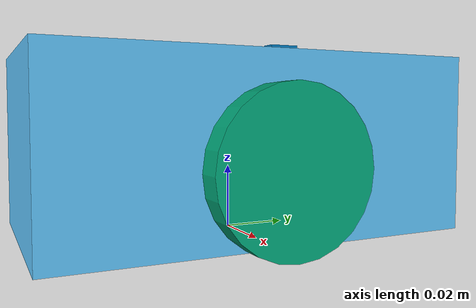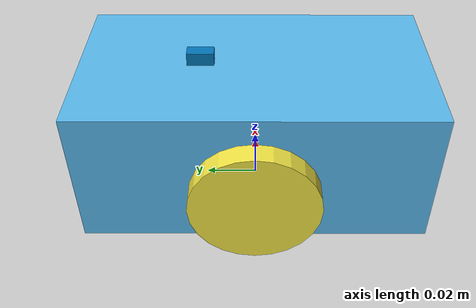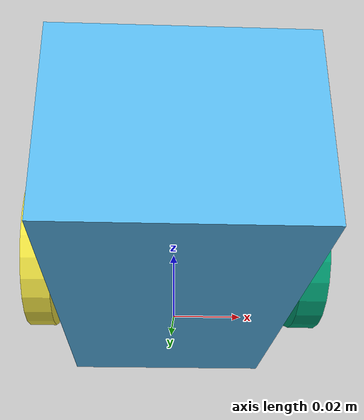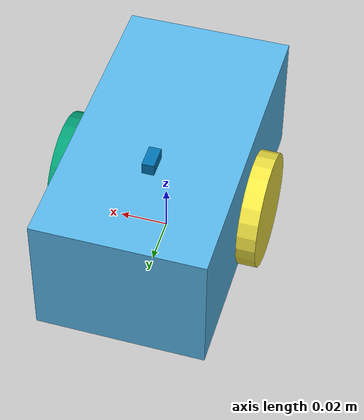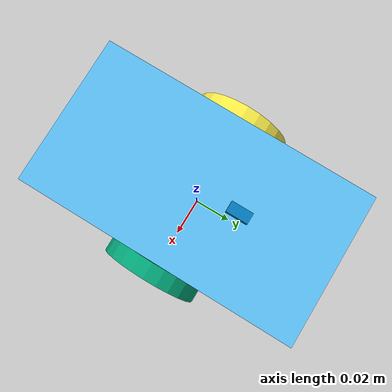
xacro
<?xml version="1.0" ?>
<robot name="SimpleMouse" xmlns:xacro="http://ros.org/wiki/xacro">

 <xacro:include filename="$(find sd_sample_pkg)/urdf/body.urdf.xacro" />
 <xacro:include filename="$(find sd_sample_pkg)/urdf/wheel.urdf.xacro" />
 <xacro:include filename="$(find sd_sample_pkg)/urdf/light_sensor.urdf.xacro" />
 <xacro:include filename="$(find sd_sample_pkg)/urdf/camera.urdf.xacro" />

  <gazebo>
    <plugin name="differential_drive_controller" filename="libgazebo_ros_diff_drive.so">
      <leftJoint>wheel_l_joint</leftJoint>
      <rightJoint>wheel_r_joint</rightJoint>
      <robotBaseFrame>base_link</robotBaseFrame>
      <wheelSeparation>0.08</wheelSeparation>
      <wheelDiameter>0.048</wheelDiameter>
      <publishWheelJointState>true</publishWheelJointState>
      <legacyMode>false</legacyMode>
      <odometryTopic>odometry</odometryTopic>
      <odometryFrame>odometry</odometryFrame>
    </plugin>
  </gazebo>

 <xacro:wheel rl="r" parent="body" />
 <xacro:wheel rl="l" parent="body" />
 <xacro:gazebo_light_sensor name="front" parent="body" xyz="0 0.02 0.03" direction="0" />
 <xacro:camera_macro name="camera/rgb" parent="body" xyz="0 0 0" rpy="${radians(-90)} ${radians(180)} 0"/>
</robot>

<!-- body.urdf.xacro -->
<robot name="body" xmlns:xacro="http://ros.org/wiki/xacro">
<link name="base_link" />

<xacro:property name="b_m" value="1.68"/>
<xacro:property name="b_m2" value="${b_m/12}"/>
<xacro:property name="b_w" value="0.07"/>
<xacro:property name="b_h" value="0.13"/>
<xacro:property name="b_d" value="0.055"/>
<link name="body">
   <visual>
　　<geometry>
　　　<box size="${b_w} ${b_h} ${b_d}" />
     </geometry>
  </visual>
   <collision>
　　<geometry>
　　　<box size="${b_w} ${b_h} ${b_d}" />
     </geometry>
  </collision>
  <inertial>
     <origin xyz="0 0 0" rpy="0 0 0" />
     <mass value="${b_m}" />
    <inertia ixx="${b_m2*(b_h*b_h+b_d*b_d)}" ixy="0"    ixz="0"
                 iyx="0"   iyy="${b_m2*(b_w*b_w+b_d*b_d)}"  iyz="0"
		 izx="0"   izy="0"  izz="${b_m2*(b_w*b_w+b_h*b_h)}" />
  </inertial>
</link>
<joint name="body_joint" type="fixed">
<parent link="base_link" />
   <child link="body" />
   <origin xyz="0 0 0.0275" rpy="0 0 0" />
</joint>
</robot>

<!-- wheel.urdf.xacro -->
<robot name="wheel" xmlns:xacro="http://ros.org/wiki/xacro" >

<xacro:property name="PI" value="3.1415926535897931"/>
<xacro:property name="wheel_radius" value="0.024"/>
<xacro:property name="wheel_height" value="0.008"/>
<xacro:property name="wheel_mass" value="0.112"/>

<xacro:macro name="wheel" params="rl parent">
<link name="wheel_${rl}">
<visual>
  <geometry>
     <cylinder length="${wheel_height}" radius="${wheel_radius}" />
  </geometry>
</visual>
   <collision>
　　<geometry>
　　　<cylinder radius="${wheel_radius}" length="${wheel_height}" />
     </geometry>
  </collision>
  <inertial>
     <origin xyz="0 0 0" rpy="0 0 0" />
     <mass value="${wheel_mass}" />
    <inertia ixx="${wheel_mass*(3*wheel_radius*wheel_radius+wheel_height*wheel_height)/12}"
        ixy="0"  ixz="0"
        iyx="0"  iyy="${wheel_mass*(3*wheel_radius*wheel_radius+wheel_height*wheel_height)/12}"
         iyz="0"
         izx="0"  izy="0"  izz="${wheel_mass*(wheel_radius*wheel_radius)/2}" />
  </inertial>
</link>
<joint name="wheel_${rl}_joint" type="continuous">
  <parent link="${parent}" />
  <child link="wheel_${rl}" />
  <xacro:if value="${rl == 'r'}">
    <origin xyz="0.04 0 ${0.022 - 0.0275}" rpy="0 ${PI/2} 0" />
  </xacro:if>
  <xacro:if value="${rl == 'l'}">
     <origin xyz="-0.04 0 ${0.022 - 0.0275}" rpy="0 ${PI/2} 0" />
  </xacro:if>
  <axis xyz="0 0 -1" />
  <limit effort="10" velocity="10" />
  <joint_properties damping="0.0" friction="0.0" />
</joint>
</xacro:macro>
</robot>

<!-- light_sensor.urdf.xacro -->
<robot name="light_sensor" xmlns:xacro="http://ros.org/wiki/xacro">

<xacro:property name="light_range" value="0.18"/>
<xacro:property name="min_range" value="0.01"/>
<xacro:property name="max_range" value="1.0"/>
<xacro:property name="PI" value="3.14159265358979"/>

<xacro:macro name="gazebo_light_sensor" params="name parent xyz direction">
    <link name="${name}_sensor">
        <visual>
            <geometry>
                <box size="0.01 0.005 0.005"/>
            </geometry>
        </visual>
        <inertial>
            <mass value="0.0001"/>
            <inertia ixx="0.0001" ixy="0" ixz="0"
                     iyx="0" iyy="0.0001" iyz="0"
                     izx="0" izy="0" izz="0.001" />
        </inertial>
    </link>

    <joint name="${name}_sensor_joint" type="fixed">
        <parent link="${parent}"/>
        <child link="${name}_sensor"/>
        <origin xyz="${xyz}" rpy="0 0 ${PI/2 + direction}"/>
    </joint>

    <gazebo reference="${name}_sensor">
        <sensor type="ray" name="${name}_light_sensor">
            <pose>0 0 0 0 0 0</pose>
            <visualize>true</visualize>
            <update_rate>20</update_rate>

            <ray>
                <scan>
                    <horizontal>
                        <sapmles>10</sapmles>
                        <resolution>1</resolution>
                        <min_angle>${light_range/2}</min_angle>
                        <max_angle>${light_range/2}</max_angle>
                    </horizontal>
                </scan>

                <range>
                    <min>${min_range}</min>
                    <max>${max_range}</max>
                    <resolution>0.001</resolution>
                </range>

                <noise>
                    <type>gaussian</type>
                    <mean>0.0</mean>
                    <stdev>0.005</stdev>
                </noise>
            </ray>

            <plugin name="gazebo_${name}_light_sensor_controller" filename="libgazebo_ros_laser.so">
                <topicName>/light_sensor/${name}/scan</topicName>
                <frameName>${name}_sensor</frameName>
            </plugin>
        </sensor>
    </gazebo>

</xacro:macro>
</robot>

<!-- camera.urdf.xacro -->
<robot name="camera" xmlns:xacro="http://ros.org/wiki/xacro">

<xacro:property name="PI" value="3.14159265358979"/>
<xacro:macro name="camera_macro" params="name parent xyz rpy">
<!-- Let's try to model camera! -->
<!-- reference: https://qiita.com/srs/items/7d78f9ad21a0e61f5bff -->
<!-- gazebo official: http://gazebosim.org/tutorials?tut=ros_gzplugins -->

    <link name="${name}_sensor">
        <visual>
            <geometry>
                <box size="0.01 0.005 0.005"/>
            </geometry>
        </visual>
        <inertial>
            <mass value="0.0001"/>
            <inertia ixx="0.0001" ixy="0" ixz="0"
                     iyx="0" iyy="0.0001" iyz="0"
                     izx="0" izy="0" izz="0.001" />
        </inertial>
    </link>

    <joint name="${name}_sensor_joint" type="fixed">
        <axis xyz="0 1 0"/>
        <parent link="${parent}"/>
        <child link="${name}_sensor"/>
        <origin xyz="${xyz}" rpy="${rpy}"/>
    </joint>

  <gazebo reference="${name}_sensor">
    <sensor type="camera" name="${name}">
      <update_rate>30.0</update_rate>
      <camera name="${name}">
        <pose>0 0 0 0 ${radians(-90)} ${radians(-90)}</pose>
        <horizontal_fov>1.3962634</horizontal_fov>
        <image>
          <width>800</width>
          <height>600</height>
          <format>R8G8B8</format>
        </image>
        <clip>
          <near>0.02</near>
          <far>300</far>
        </clip>
        <noise>
          <type>gaussian</type>
          <!-- Noise is sampled independently per pixel on each frame.
               That pixel's noise value is added to each of its color
               channels, which at that point lie in the range [0,1]. -->
          <mean>0.0</mean>
          <stddev>0.007</stddev>
        </noise>
      </camera>
      <plugin name="camera_controller" filename="libgazebo_ros_camera.so">
        <alwaysOn>true</alwaysOn>
        <updateRate>0.0</updateRate>
        <cameraName>${name}</cameraName>
        <imageTopicName>image_raw</imageTopicName>
        <cameraInfoTopicName>camera_info</cameraInfoTopicName>
        <frameName>${name}_link</frameName>
        <hackBaseline>0.07</hackBaseline>
        <distortionK1>0.0</distortionK1>
        <distortionK2>0.0</distortionK2>
        <distortionK3>0.0</distortionK3>
        <distortionT1>0.0</distortionT1>
        <distortionT2>0.0</distortionT2>
      </plugin>
    </sensor>
  </gazebo>
</xacro:macro>
</robot>
